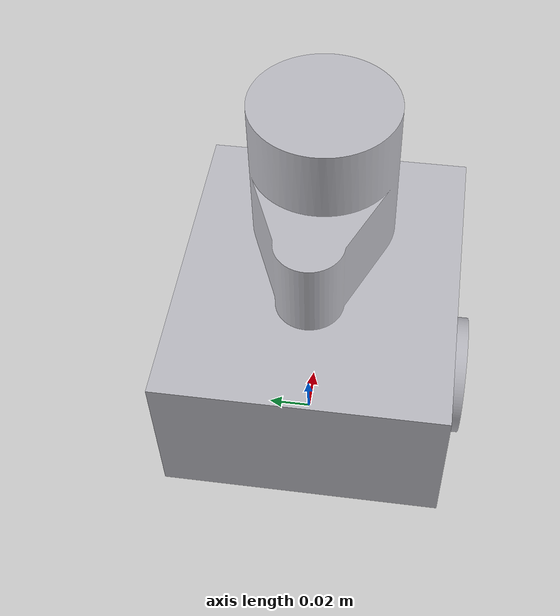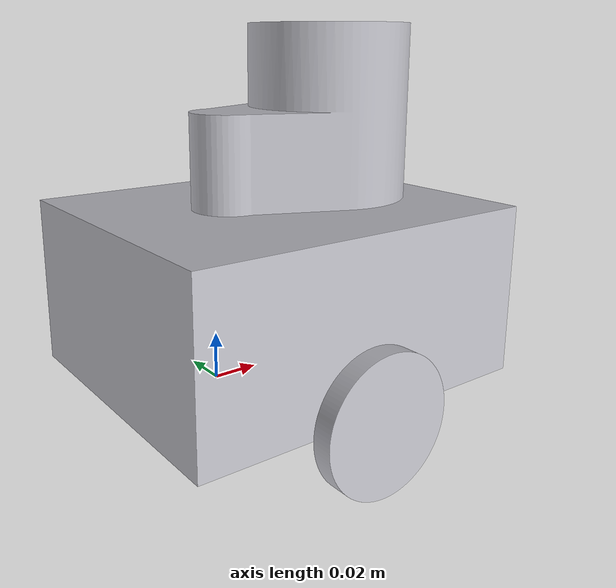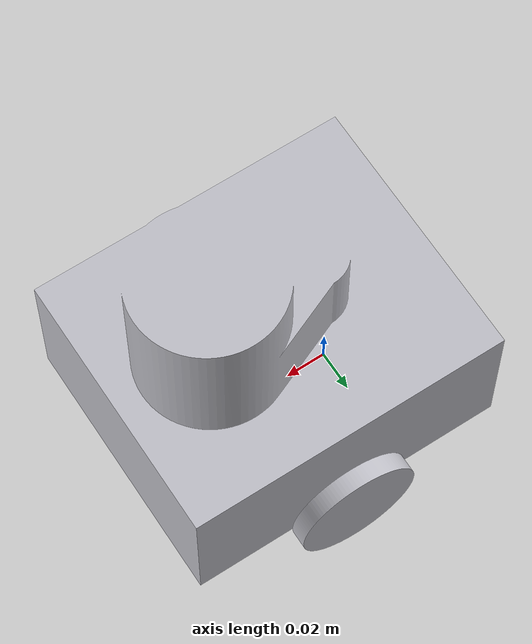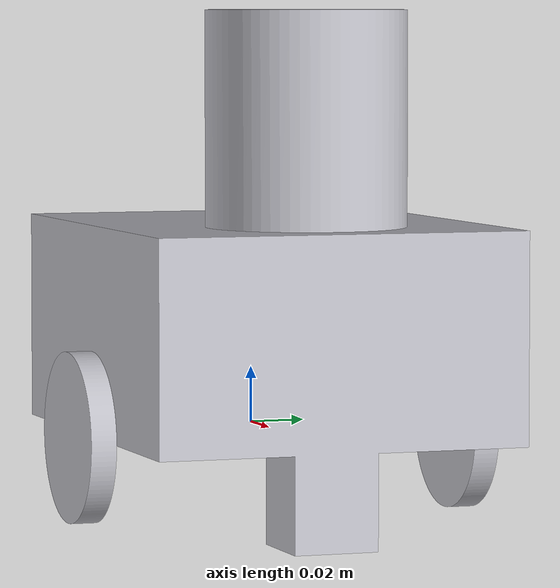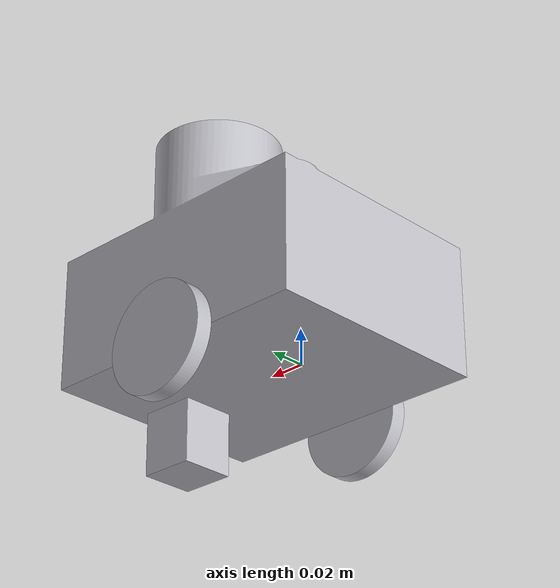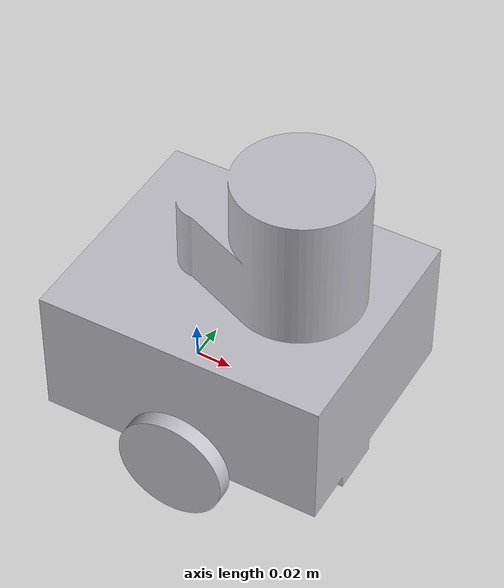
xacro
<?xml version="1.0" ?>
<robot name="Modelo_URDF" xmlns:xacro="http://www.ros.org/wiki/xacro">

<link name="base_link">
  <inertial>
    <origin xyz="0.03416585012159351 -0.0018685464980087363 0.0488377134584226" rpy="0 0 0"/>
    <mass value="15.023361648425876"/>
    <inertia ixx="0.037534" iyy="0.047706" izz="0.046926" ixy="-0.000115" iyz="-0.000363" ixz="-0.003245"/>
  </inertial>
  <visual>
    <origin xyz="0 0 0" rpy="0 0 0"/>
    <geometry>
      <mesh filename="package://Modelo_URDF_description/meshes/base_link.stl" scale="0.001 0.001 0.001"/>
    </geometry>
    <material name="silver"/>
  </visual>
  <collision>
    <origin xyz="0 0 0" rpy="0 0 0"/>
    <geometry>
      <mesh filename="package://Modelo_URDF_description/meshes/base_link.stl" scale="0.001 0.001 0.001"/>
    </geometry>
  </collision>
</link>

<link name="Componente1_1">
  <inertial>
    <origin xyz="3.469446951953614e-18 -0.00449972130395665 0.0" rpy="0 0 0"/>
    <mass value="0.19975816887850698"/>
    <inertia ixx="4.6e-05" iyy="9e-05" izz="4.6e-05" ixy="-0.0" iyz="0.0" ixz="0.0"/>
  </inertial>
  <visual>
    <origin xyz="-0.029 0.068271 -0.0" rpy="0 0 0"/>
    <geometry>
      <mesh filename="package://Modelo_URDF_description/meshes/Componente1_1.stl" scale="0.001 0.001 0.001"/>
    </geometry>
    <material name="silver"/>
  </visual>
  <collision>
    <origin xyz="-0.029 0.068271 -0.0" rpy="0 0 0"/>
    <geometry>
      <mesh filename="package://Modelo_URDF_description/meshes/Componente1_1.stl" scale="0.001 0.001 0.001"/>
    </geometry>
  </collision>
</link>

<link name="Componente2_1">
  <inertial>
    <origin xyz="-1.734723475976807e-17 0.004500278696043386 0.0" rpy="0 0 0"/>
    <mass value="0.19975816887850698"/>
    <inertia ixx="4.6e-05" iyy="9e-05" izz="4.6e-05" ixy="-0.0" iyz="0.0" ixz="0.0"/>
  </inertial>
  <visual>
    <origin xyz="-0.029 -0.063729 -0.0" rpy="0 0 0"/>
    <geometry>
      <mesh filename="package://Modelo_URDF_description/meshes/Componente2_1.stl" scale="0.001 0.001 0.001"/>
    </geometry>
    <material name="silver"/>
  </visual>
  <collision>
    <origin xyz="-0.029 -0.063729 -0.0" rpy="0 0 0"/>
    <geometry>
      <mesh filename="package://Modelo_URDF_description/meshes/Componente2_1.stl" scale="0.001 0.001 0.001"/>
    </geometry>
  </collision>
</link>

<joint name="Revoluci�n 1" type="continuous">
  <origin xyz="0.029 -0.068271 0.0" rpy="0 0 0"/>
  <parent link="base_link"/>
  <child link="Componente1_1"/>
  <axis xyz="0.0 -1.0 0.0"/>
</joint>

<joint name="Revoluci�n 2" type="continuous">
  <origin xyz="0.029 0.063729 0.0" rpy="0 0 0"/>
  <parent link="base_link"/>
  <child link="Componente2_1"/>
  <axis xyz="0.0 1.0 0.0"/>
</joint>

</robot>
